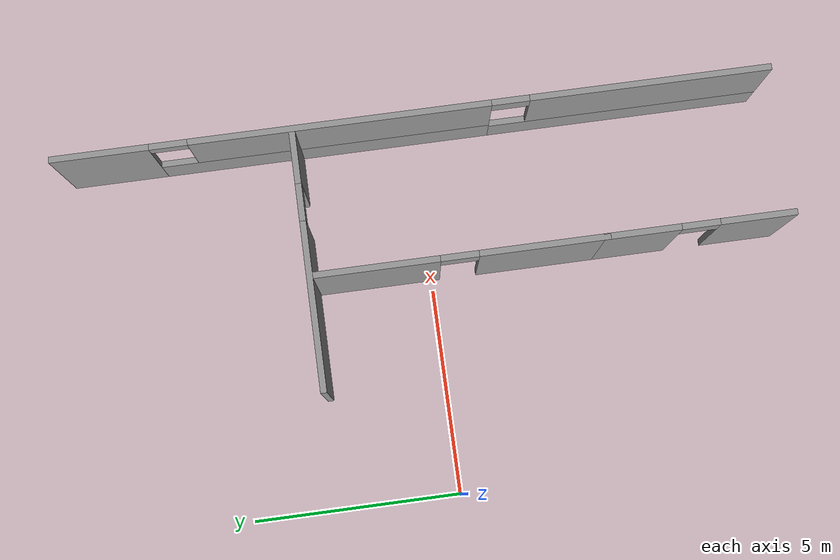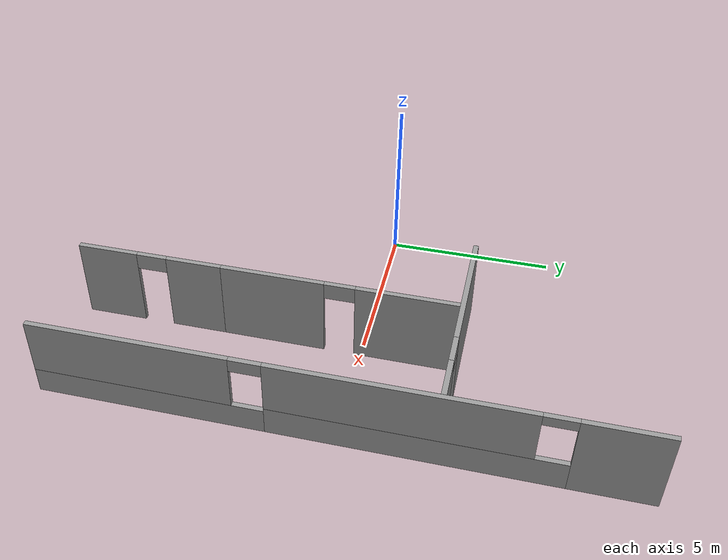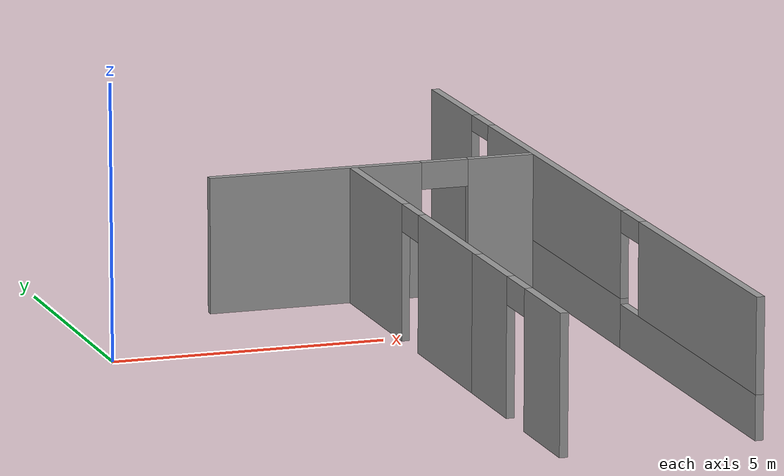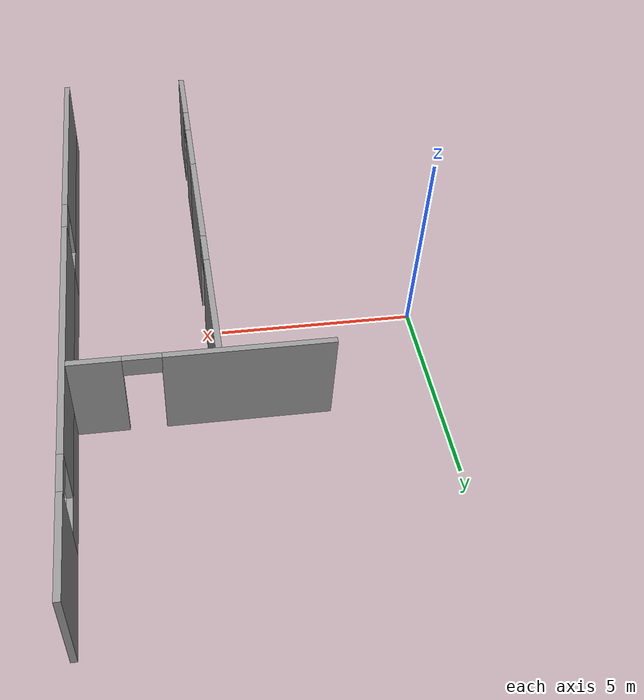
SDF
<sdf version="1.7">
 <model name="federicos_house_v2">
  <link name="Wall_11">
   <pose>8.85021 -0.00256 0 0 0 -1.5708</pose>
   <visual name="Wall_11_Visual_3">
    <pose>5.63643 0 1.65 0 -0 0</pose>
    <geometry><box><size>5.72713 0.15 1.7</size></box></geometry>
    <material>
     <script><uri>file://media/materials/scripts/gazebo.material</uri><name>Gazebo/Grey</name></script>
     <ambient>0.952941 0.952941 0.952941 1</ambient>
     <shader type="pixel"/>
    </material>
    <meta><layer>0</layer></meta>
   </visual>
   <visual name="Wall_11_Visual_2">
    <pose>5.18643 0 0.4 0 -0 0</pose>
    <geometry><box><size>6.62713 0.15 0.8</size></box></geometry>
    <material>
     <script><uri>file://media/materials/scripts/gazebo.material</uri><name>Gazebo/Grey</name></script>
     <ambient>0.952941 0.952941 0.952941 1</ambient>
     <shader type="pixel"/>
    </material>
    <meta><layer>0</layer></meta>
   </visual>
   <visual name="Wall_11_Visual_6">
    <pose>-5.72165 0 2.35 0 -0 0</pose>
    <geometry><box><size>0.9 0.15 0.3</size></box></geometry>
    <material>
     <script><uri>file://media/materials/scripts/gazebo.material</uri><name>Gazebo/Grey</name></script>
     <ambient>0.952941 0.952941 0.952941 1</ambient>
     <shader type="pixel"/>
    </material>
    <meta><layer>0</layer></meta>
   </visual>
   <visual name="Wall_11_Visual_5">
    <pose>2.32287 0 2.3 0 -0 0</pose>
    <geometry><box><size>0.9 0.15 0.4</size></box></geometry>
    <material>
     <script><uri>file://media/materials/scripts/gazebo.material</uri><name>Gazebo/Grey</name></script>
     <ambient>0.952941 0.952941 0.952941 1</ambient>
     <shader type="pixel"/>
    </material>
    <meta><layer>0</layer></meta>
   </visual>
   <visual name="Wall_11_Visual_0">
    <pose>-7.33583 0 1.25 0 -0 0</pose>
    <geometry><box><size>2.32835 0.15 2.5</size></box></geometry>
    <material>
     <script><uri>file://media/materials/scripts/gazebo.material</uri><name>Gazebo/Grey</name></script>
     <ambient>0.952941 0.952941 0.952941 1</ambient>
     <shader type="pixel"/>
    </material>
    <meta><layer>0</layer></meta>
   </visual>
   <visual name="Wall_11_Visual_1">
    <pose>-2.14939 0 0.45 0 -0 0</pose>
    <geometry><box><size>8.04452 0.15 0.9</size></box></geometry>
    <material>
     <script><uri>file://media/materials/scripts/gazebo.material</uri><name>Gazebo/Grey</name></script>
     <ambient>0.952941 0.952941 0.952941 1</ambient>
     <shader type="pixel"/>
    </material>
    <meta><layer>0</layer></meta>
   </visual>
   <visual name="Wall_11_Visual_4">
    <pose>-1.69939 0 1.7 0 -0 0</pose>
    <geometry><box><size>7.14452 0.15 1.6</size></box></geometry>
    <material>
     <script><uri>file://media/materials/scripts/gazebo.material</uri><name>Gazebo/Grey</name></script>
     <ambient>0.952941 0.952941 0.952941 1</ambient>
     <shader type="pixel"/>
    </material>
    <meta><layer>0</layer></meta>
   </visual>
   <collision name="Wall_11_Collision_0">
    <pose>-7.33583 0 1.25 0 -0 0</pose>
    <geometry><box><size>2.32835 0.15 2.5</size></box></geometry>
    <surface>
     <friction>
      <ode><mu>1</mu><mu2>1</mu2><fdir1>0 0 0</fdir1><slip1>0</slip1><slip2>0</slip2></ode>
      <torsional>
       <coefficient>1</coefficient>
       <patch_radius>0</patch_radius>
       <surface_radius>0</surface_radius>
       <use_patch_radius>1</use_patch_radius>
       <ode><slip>0</slip></ode>
      </torsional>
     </friction>
     <bounce><restitution_coefficient>0</restitution_coefficient><threshold>1e+06</threshold></bounce>
     <contact>
      <collide_without_contact>0</collide_without_contact>
      <collide_without_contact_bitmask>1</collide_without_contact_bitmask>
      <collide_bitmask>1</collide_bitmask>
      <ode>
       <soft_cfm>0</soft_cfm>
       <soft_erp>0.2</soft_erp>
       <kp>1e+13</kp>
       <kd>1</kd>
       <max_vel>0.01</max_vel>
       <min_depth>0</min_depth>
      </ode>
      <bullet>
       <split_impulse>1</split_impulse>
       <split_impulse_penetration_threshold>-0.01</split_impulse_penetration_threshold>
       <soft_cfm>0</soft_cfm>
       <soft_erp>0.2</soft_erp>
       <kp>1e+13</kp>
       <kd>1</kd>
      </bullet>
     </contact>
    </surface>
   </collision>
   <collision name="Wall_11_Collision_1">
    <pose>-2.14939 0 0.45 0 -0 0</pose>
    <geometry><box><size>8.04452 0.15 0.9</size></box></geometry>
    <surface>
     <friction>
      <ode><mu>1</mu><mu2>1</mu2><fdir1>0 0 0</fdir1><slip1>0</slip1><slip2>0</slip2></ode>
      <torsional>
       <coefficient>1</coefficient>
       <patch_radius>0</patch_radius>
       <surface_radius>0</surface_radius>
       <use_patch_radius>1</use_patch_radius>
       <ode><slip>0</slip></ode>
      </torsional>
     </friction>
     <bounce><restitution_coefficient>0</restitution_coefficient><threshold>1e+06</threshold></bounce>
     <contact>
      <collide_without_contact>0</collide_without_contact>
      <collide_without_contact_bitmask>1</collide_without_contact_bitmask>
      <collide_bitmask>1</collide_bitmask>
      <ode>
       <soft_cfm>0</soft_cfm>
       <soft_erp>0.2</soft_erp>
       <kp>1e+13</kp>
       <kd>1</kd>
       <max_vel>0.01</max_vel>
       <min_depth>0</min_depth>
      </ode>
      <bullet>
       <split_impulse>1</split_impulse>
       <split_impulse_penetration_threshold>-0.01</split_impulse_penetration_threshold>
       <soft_cfm>0</soft_cfm>
       <soft_erp>0.2</soft_erp>
       <kp>1e+13</kp>
       <kd>1</kd>
      </bullet>
     </contact>
    </surface>
   </collision>
   <collision name="Wall_11_Collision_6">
    <pose>-5.72165 0 2.35 0 -0 0</pose>
    <geometry><box><size>0.9 0.15 0.3</size></box></geometry>
    <surface>
     <friction>
      <ode><mu>1</mu><mu2>1</mu2><fdir1>0 0 0</fdir1><slip1>0</slip1><slip2>0</slip2></ode>
      <torsional>
       <coefficient>1</coefficient>
       <patch_radius>0</patch_radius>
       <surface_radius>0</surface_radius>
       <use_patch_radius>1</use_patch_radius>
       <ode><slip>0</slip></ode>
      </torsional>
     </friction>
     <bounce><restitution_coefficient>0</restitution_coefficient><threshold>1e+06</threshold></bounce>
     <contact>
      <collide_without_contact>0</collide_without_contact>
      <collide_without_contact_bitmask>1</collide_without_contact_bitmask>
      <collide_bitmask>1</collide_bitmask>
      <ode>
       <soft_cfm>0</soft_cfm>
       <soft_erp>0.2</soft_erp>
       <kp>1e+13</kp>
       <kd>1</kd>
       <max_vel>0.01</max_vel>
       <min_depth>0</min_depth>
      </ode>
      <bullet>
       <split_impulse>1</split_impulse>
       <split_impulse_penetration_threshold>-0.01</split_impulse_penetration_threshold>
       <soft_cfm>0</soft_cfm>
       <soft_erp>0.2</soft_erp>
       <kp>1e+13</kp>
       <kd>1</kd>
      </bullet>
     </contact>
    </surface>
   </collision>
   <collision name="Wall_11_Collision_2">
    <pose>5.18643 0 0.4 0 -0 0</pose>
    <geometry><box><size>6.62713 0.15 0.8</size></box></geometry>
    <surface>
     <friction>
      <ode><mu>1</mu><mu2>1</mu2><fdir1>0 0 0</fdir1><slip1>0</slip1><slip2>0</slip2></ode>
      <torsional>
       <coefficient>1</coefficient>
       <patch_radius>0</patch_radius>
       <surface_radius>0</surface_radius>
       <use_patch_radius>1</use_patch_radius>
       <ode><slip>0</slip></ode>
      </torsional>
     </friction>
     <bounce><restitution_coefficient>0</restitution_coefficient><threshold>1e+06</threshold></bounce>
     <contact>
      <collide_without_contact>0</collide_without_contact>
      <collide_without_contact_bitmask>1</collide_without_contact_bitmask>
      <collide_bitmask>1</collide_bitmask>
      <ode>
       <soft_cfm>0</soft_cfm>
       <soft_erp>0.2</soft_erp>
       <kp>1e+13</kp>
       <kd>1</kd>
       <max_vel>0.01</max_vel>
       <min_depth>0</min_depth>
      </ode>
      <bullet>
       <split_impulse>1</split_impulse>
       <split_impulse_penetration_threshold>-0.01</split_impulse_penetration_threshold>
       <soft_cfm>0</soft_cfm>
       <soft_erp>0.2</soft_erp>
       <kp>1e+13</kp>
       <kd>1</kd>
      </bullet>
     </contact>
    </surface>
   </collision>
   <collision name="Wall_11_Collision_5">
    <pose>2.32287 0 2.3 0 -0 0</pose>
    <geometry><box><size>0.9 0.15 0.4</size></box></geometry>
    <surface>
     <friction>
      <ode><mu>1</mu><mu2>1</mu2><fdir1>0 0 0</fdir1><slip1>0</slip1><slip2>0</slip2></ode>
      <torsional>
       <coefficient>1</coefficient>
       <patch_radius>0</patch_radius>
       <surface_radius>0</surface_radius>
       <use_patch_radius>1</use_patch_radius>
       <ode><slip>0</slip></ode>
      </torsional>
     </friction>
     <bounce><restitution_coefficient>0</restitution_coefficient><threshold>1e+06</threshold></bounce>
     <contact>
      <collide_without_contact>0</collide_without_contact>
      <collide_without_contact_bitmask>1</collide_without_contact_bitmask>
      <collide_bitmask>1</collide_bitmask>
      <ode>
       <soft_cfm>0</soft_cfm>
       <soft_erp>0.2</soft_erp>
       <kp>1e+13</kp>
       <kd>1</kd>
       <max_vel>0.01</max_vel>
       <min_depth>0</min_depth>
      </ode>
      <bullet>
       <split_impulse>1</split_impulse>
       <split_impulse_penetration_threshold>-0.01</split_impulse_penetration_threshold>
       <soft_cfm>0</soft_cfm>
       <soft_erp>0.2</soft_erp>
       <kp>1e+13</kp>
       <kd>1</kd>
      </bullet>
     </contact>
    </surface>
   </collision>
   <collision name="Wall_11_Collision_3">
    <pose>5.63643 0 1.65 0 -0 0</pose>
    <geometry><box><size>5.72713 0.15 1.7</size></box></geometry>
    <surface>
     <friction>
      <ode><mu>1</mu><mu2>1</mu2><fdir1>0 0 0</fdir1><slip1>0</slip1><slip2>0</slip2></ode>
      <torsional>
       <coefficient>1</coefficient>
       <patch_radius>0</patch_radius>
       <surface_radius>0</surface_radius>
       <use_patch_radius>1</use_patch_radius>
       <ode><slip>0</slip></ode>
      </torsional>
     </friction>
     <bounce><restitution_coefficient>0</restitution_coefficient><threshold>1e+06</threshold></bounce>
     <contact>
      <collide_without_contact>0</collide_without_contact>
      <collide_without_contact_bitmask>1</collide_without_contact_bitmask>
      <collide_bitmask>1</collide_bitmask>
      <ode>
       <soft_cfm>0</soft_cfm>
       <soft_erp>0.2</soft_erp>
       <kp>1e+13</kp>
       <kd>1</kd>
       <max_vel>0.01</max_vel>
       <min_depth>0</min_depth>
      </ode>
      <bullet>
       <split_impulse>1</split_impulse>
       <split_impulse_penetration_threshold>-0.01</split_impulse_penetration_threshold>
       <soft_cfm>0</soft_cfm>
       <soft_erp>0.2</soft_erp>
       <kp>1e+13</kp>
       <kd>1</kd>
      </bullet>
     </contact>
    </surface>
   </collision>
   <collision name="Wall_11_Collision_4">
    <pose>-1.69939 0 1.7 0 -0 0</pose>
    <geometry><box><size>7.14452 0.15 1.6</size></box></geometry>
    <surface>
     <friction>
      <ode><mu>1</mu><mu2>1</mu2><fdir1>0 0 0</fdir1><slip1>0</slip1><slip2>0</slip2></ode>
      <torsional>
       <coefficient>1</coefficient>
       <patch_radius>0</patch_radius>
       <surface_radius>0</surface_radius>
       <use_patch_radius>1</use_patch_radius>
       <ode><slip>0</slip></ode>
      </torsional>
     </friction>
     <bounce><restitution_coefficient>0</restitution_coefficient><threshold>1e+06</threshold></bounce>
     <contact>
      <collide_without_contact>0</collide_without_contact>
      <collide_without_contact_bitmask>1</collide_without_contact_bitmask>
      <collide_bitmask>1</collide_bitmask>
      <ode>
       <soft_cfm>0</soft_cfm>
       <soft_erp>0.2</soft_erp>
       <kp>1e+13</kp>
       <kd>1</kd>
       <max_vel>0.01</max_vel>
       <min_depth>0</min_depth>
      </ode>
      <bullet>
       <split_impulse>1</split_impulse>
       <split_impulse_penetration_threshold>-0.01</split_impulse_penetration_threshold>
       <soft_cfm>0</soft_cfm>
       <soft_erp>0.2</soft_erp>
       <kp>1e+13</kp>
       <kd>1</kd>
      </bullet>
     </contact>
    </surface>
   </collision>
  </link>
  <link name="Wall_25">
   <pose>5.3498 -6.253 0 0 0 -1.5708</pose>
   <visual name="Wall_25_Visual_0">
    <pose>-1.34853 0 1.25 0 -0 0</pose>
    <geometry><box><size>1.80293 0.15 2.5</size></box></geometry>
    <material>
     <script><uri>file://media/materials/scripts/gazebo.material</uri><name>Gazebo/Grey</name></script>
     <ambient>0.952941 0.952941 0.952941 1</ambient>
     <shader type="pixel"/>
    </material>
    <meta><layer>0</layer></meta>
   </visual>
   <visual name="Wall_25_Visual_1">
    <pose>1.35147 0 1.25 0 -0 0</pose>
    <geometry><box><size>1.79707 0.15 2.5</size></box></geometry>
    <material>
     <script><uri>file://media/materials/scripts/gazebo.material</uri><name>Gazebo/Grey</name></script>
     <ambient>0.952941 0.952941 0.952941 1</ambient>
     <shader type="pixel"/>
    </material>
    <meta><layer>0</layer></meta>
   </visual>
   <visual name="Wall_25_Visual_2">
    <pose>0.002931 0 2.25 0 -0 0</pose>
    <geometry><box><size>0.9 0.15 0.5</size></box></geometry>
    <material>
     <script><uri>file://media/materials/scripts/gazebo.material</uri><name>Gazebo/Grey</name></script>
     <ambient>0.952941 0.952941 0.952941 1</ambient>
     <shader type="pixel"/>
    </material>
    <meta><layer>0</layer></meta>
   </visual>
   <collision name="Wall_25_Collision_0">
    <pose>-1.34853 0 1.25 0 -0 0</pose>
    <geometry><box><size>1.80293 0.15 2.5</size></box></geometry>
    <surface>
     <friction>
      <ode><mu>1</mu><mu2>1</mu2><fdir1>0 0 0</fdir1><slip1>0</slip1><slip2>0</slip2></ode>
      <torsional>
       <coefficient>1</coefficient>
       <patch_radius>0</patch_radius>
       <surface_radius>0</surface_radius>
       <use_patch_radius>1</use_patch_radius>
       <ode><slip>0</slip></ode>
      </torsional>
     </friction>
     <bounce><restitution_coefficient>0</restitution_coefficient><threshold>1e+06</threshold></bounce>
     <contact>
      <collide_without_contact>0</collide_without_contact>
      <collide_without_contact_bitmask>1</collide_without_contact_bitmask>
      <collide_bitmask>1</collide_bitmask>
      <ode>
       <soft_cfm>0</soft_cfm>
       <soft_erp>0.2</soft_erp>
       <kp>1e+13</kp>
       <kd>1</kd>
       <max_vel>0.01</max_vel>
       <min_depth>0</min_depth>
      </ode>
      <bullet>
       <split_impulse>1</split_impulse>
       <split_impulse_penetration_threshold>-0.01</split_impulse_penetration_threshold>
       <soft_cfm>0</soft_cfm>
       <soft_erp>0.2</soft_erp>
       <kp>1e+13</kp>
       <kd>1</kd>
      </bullet>
     </contact>
    </surface>
   </collision>
   <collision name="Wall_25_Collision_2">
    <pose>0.002931 0 2.25 0 -0 0</pose>
    <geometry><box><size>0.9 0.15 0.5</size></box></geometry>
    <surface>
     <friction>
      <ode><mu>1</mu><mu2>1</mu2><fdir1>0 0 0</fdir1><slip1>0</slip1><slip2>0</slip2></ode>
      <torsional>
       <coefficient>1</coefficient>
       <patch_radius>0</patch_radius>
       <surface_radius>0</surface_radius>
       <use_patch_radius>1</use_patch_radius>
       <ode><slip>0</slip></ode>
      </torsional>
     </friction>
     <bounce><restitution_coefficient>0</restitution_coefficient><threshold>1e+06</threshold></bounce>
     <contact>
      <collide_without_contact>0</collide_without_contact>
      <collide_without_contact_bitmask>1</collide_without_contact_bitmask>
      <collide_bitmask>1</collide_bitmask>
      <ode>
       <soft_cfm>0</soft_cfm>
       <soft_erp>0.2</soft_erp>
       <kp>1e+13</kp>
       <kd>1</kd>
       <max_vel>0.01</max_vel>
       <min_depth>0</min_depth>
      </ode>
      <bullet>
       <split_impulse>1</split_impulse>
       <split_impulse_penetration_threshold>-0.01</split_impulse_penetration_threshold>
       <soft_cfm>0</soft_cfm>
       <soft_erp>0.2</soft_erp>
       <kp>1e+13</kp>
       <kd>1</kd>
      </bullet>
     </contact>
    </surface>
   </collision>
   <collision name="Wall_25_Collision_1">
    <pose>1.35147 0 1.25 0 -0 0</pose>
    <geometry><box><size>1.79707 0.15 2.5</size></box></geometry>
    <surface>
     <friction>
      <ode><mu>1</mu><mu2>1</mu2><fdir1>0 0 0</fdir1><slip1>0</slip1><slip2>0</slip2></ode>
      <torsional>
       <coefficient>1</coefficient>
       <patch_radius>0</patch_radius>
       <surface_radius>0</surface_radius>
       <use_patch_radius>1</use_patch_radius>
       <ode><slip>0</slip></ode>
      </torsional>
     </friction>
     <bounce><restitution_coefficient>0</restitution_coefficient><threshold>1e+06</threshold></bounce>
     <contact>
      <collide_without_contact>0</collide_without_contact>
      <collide_without_contact_bitmask>1</collide_without_contact_bitmask>
      <collide_bitmask>1</collide_bitmask>
      <ode>
       <soft_cfm>0</soft_cfm>
       <soft_erp>0.2</soft_erp>
       <kp>1e+13</kp>
       <kd>1</kd>
       <max_vel>0.01</max_vel>
       <min_depth>0</min_depth>
      </ode>
      <bullet>
       <split_impulse>1</split_impulse>
       <split_impulse_penetration_threshold>-0.01</split_impulse_penetration_threshold>
       <soft_cfm>0</soft_cfm>
       <soft_erp>0.2</soft_erp>
       <kp>1e+13</kp>
       <kd>1</kd>
      </bullet>
     </contact>
    </surface>
   </collision>
  </link>
  <link name="Wall_32">
   <pose>5.3498 -0.653 0 0 -0 1.5708</pose>
   <inertial>
    <mass>1</mass>
    <inertia><ixx>1</ixx><ixy>0</ixy><ixz>0</ixz><iyy>1</iyy><iyz>0</iyz><izz>1</izz></inertia>
   </inertial>
   <visual name="Wall_32_Visual_1">
    <pose>1.93 0 1.25 0 -0 0</pose>
    <geometry><box><size>2.95 0.15 2.5</size></box></geometry>
    <material>
     <script><uri>file://media/materials/scripts/gazebo.material</uri><name>Gazebo/Grey</name></script>
     <ambient>0.953 0.953 0.953 1</ambient>
     <shader type="pixel"><normal_map>__default__</normal_map></shader>
     <diffuse>0.7 0.7 0.7 1</diffuse>
     <specular>0.01 0.01 0.01 1</specular>
     <emissive>0 0 0 1</emissive>
    </material>
    <meta><layer>0</layer></meta>
   </visual>
   <visual name="Wall_32_Visual_0">
    <pose>-1.97184 0 1.25 0 -0 0</pose>
    <geometry><box><size>3.05631 0.15 2.5</size></box></geometry>
    <material>
     <script><uri>file://media/materials/scripts/gazebo.material</uri><name>Gazebo/Grey</name></script>
     <ambient>0.953 0.953 0.953 1</ambient>
     <shader type="pixel"><normal_map>__default__</normal_map></shader>
     <diffuse>0.7 0.7 0.7 1</diffuse>
     <specular>0.01 0.01 0.01 1</specular>
     <emissive>0 0 0 1</emissive>
    </material>
    <meta><layer>0</layer></meta>
   </visual>
   <visual name="Wall_32_Visual_2">
    <pose>0.006313 0 2.25 0 -0 0</pose>
    <geometry><box><size>0.9 0.15 0.5</size></box></geometry>
    <material>
     <script><uri>file://media/materials/scripts/gazebo.material</uri><name>Gazebo/Grey</name></script>
     <ambient>0.953 0.953 0.953 1</ambient>
     <shader type="pixel"><normal_map>__default__</normal_map></shader>
     <diffuse>0.7 0.7 0.7 1</diffuse>
     <specular>0.01 0.01 0.01 1</specular>
     <emissive>0 0 0 1</emissive>
    </material>
    <meta><layer>0</layer></meta>
   </visual>
   <collision name="Wall_32_Collision_1">
    <pose>1.93 0 1.25 0 -0 0</pose>
    <geometry><box><size>2.95 0.15 2.5</size></box></geometry>
    <surface>
     <friction>
      <ode><mu>1</mu><mu2>1</mu2><fdir1>0 0 0</fdir1><slip1>0</slip1><slip2>0</slip2></ode>
      <torsional>
       <coefficient>1</coefficient>
       <patch_radius>0</patch_radius>
       <surface_radius>0</surface_radius>
       <use_patch_radius>1</use_patch_radius>
       <ode><slip>0</slip></ode>
      </torsional>
     </friction>
     <bounce><restitution_coefficient>0</restitution_coefficient><threshold>1e+06</threshold></bounce>
     <contact>
      <collide_without_contact>0</collide_without_contact>
      <collide_without_contact_bitmask>1</collide_without_contact_bitmask>
      <collide_bitmask>1</collide_bitmask>
      <ode>
       <soft_cfm>0</soft_cfm>
       <soft_erp>0.2</soft_erp>
       <kp>1e+13</kp>
       <kd>1</kd>
       <max_vel>0.01</max_vel>
       <min_depth>0</min_depth>
      </ode>
      <bullet>
       <split_impulse>1</split_impulse>
       <split_impulse_penetration_threshold>-0.01</split_impulse_penetration_threshold>
       <soft_cfm>0</soft_cfm>
       <soft_erp>0.2</soft_erp>
       <kp>1e+13</kp>
       <kd>1</kd>
      </bullet>
     </contact>
    </surface>
   </collision>
   <collision name="Wall_32_Collision_0">
    <pose>-1.97184 0 1.25 0 -0 0</pose>
    <geometry><box><size>3.05631 0.15 2.5</size></box></geometry>
    <surface>
     <friction>
      <ode><mu>1</mu><mu2>1</mu2><fdir1>0 0 0</fdir1><slip1>0</slip1><slip2>0</slip2></ode>
      <torsional>
       <coefficient>1</coefficient>
       <patch_radius>0</patch_radius>
       <surface_radius>0</surface_radius>
       <use_patch_radius>1</use_patch_radius>
       <ode><slip>0</slip></ode>
      </torsional>
     </friction>
     <bounce><restitution_coefficient>0</restitution_coefficient><threshold>1e+06</threshold></bounce>
     <contact>
      <collide_without_contact>0</collide_without_contact>
      <collide_without_contact_bitmask>1</collide_without_contact_bitmask>
      <collide_bitmask>1</collide_bitmask>
      <ode>
       <soft_cfm>0</soft_cfm>
       <soft_erp>0.2</soft_erp>
       <kp>1e+13</kp>
       <kd>1</kd>
       <max_vel>0.01</max_vel>
       <min_depth>0</min_depth>
      </ode>
      <bullet>
       <split_impulse>1</split_impulse>
       <split_impulse_penetration_threshold>-0.01</split_impulse_penetration_threshold>
       <soft_cfm>0</soft_cfm>
       <soft_erp>0.2</soft_erp>
       <kp>1e+13</kp>
       <kd>1</kd>
      </bullet>
     </contact>
    </surface>
   </collision>
   <collision name="Wall_32_Collision_2">
    <pose>0.006313 0 2.25 0 -0 0</pose>
    <geometry><box><size>0.9 0.15 0.5</size></box></geometry>
    <surface>
     <friction>
      <ode><mu>1</mu><mu2>1</mu2><fdir1>0 0 0</fdir1><slip1>0</slip1><slip2>0</slip2></ode>
      <torsional>
       <coefficient>1</coefficient>
       <patch_radius>0</patch_radius>
       <surface_radius>0</surface_radius>
       <use_patch_radius>1</use_patch_radius>
       <ode><slip>0</slip></ode>
      </torsional>
     </friction>
     <bounce><restitution_coefficient>0</restitution_coefficient><threshold>1e+06</threshold></bounce>
     <contact>
      <collide_without_contact>0</collide_without_contact>
      <collide_without_contact_bitmask>1</collide_without_contact_bitmask>
      <collide_bitmask>1</collide_bitmask>
      <ode>
       <soft_cfm>0</soft_cfm>
       <soft_erp>0.2</soft_erp>
       <kp>1e+13</kp>
       <kd>1</kd>
       <max_vel>0.01</max_vel>
       <min_depth>0</min_depth>
      </ode>
      <bullet>
       <split_impulse>1</split_impulse>
       <split_impulse_penetration_threshold>-0.01</split_impulse_penetration_threshold>
       <soft_cfm>0</soft_cfm>
       <soft_erp>0.2</soft_erp>
       <kp>1e+13</kp>
       <kd>1</kd>
      </bullet>
     </contact>
    </surface>
   </collision>
  </link>
  <link name="Wall_34">
   <pose>5.6948 2.828 0 0 -0 0</pose>
   <inertial>
    <mass>1</mass>
    <inertia><ixx>1</ixx><ixy>0</ixy><ixz>0</ixz><iyy>1</iyy><iyz>0</iyz><izz>1</izz></inertia>
   </inertial>
   <visual name="Wall_34_Visual_2">
    <pose>1.38704 0 2.25 0 -0 0</pose>
    <geometry><box><size>0.9 0.15 0.5</size></box></geometry>
    <material>
     <script><uri>file://media/materials/scripts/gazebo.material</uri><name>Gazebo/Grey</name></script>
     <ambient>0.95 0.95 0.95 1</ambient>
     <shader type="pixel"><normal_map>__default__</normal_map></shader>
     <diffuse>0.7 0.7 0.7 1</diffuse>
     <specular>0.01 0.01 0.01 1</specular>
     <emissive>0 0 0 1</emissive>
    </material>
    <meta><layer>0</layer></meta>
   </visual>
   <visual name="Wall_34_Visual_1">
    <pose>2.4585 0 1.25 0 -0 0</pose>
    <geometry><box><size>1.245 0.15 2.5</size></box></geometry>
    <material>
     <script><uri>file://media/materials/scripts/gazebo.material</uri><name>Gazebo/Grey</name></script>
     <ambient>0.95 0.95 0.95 1</ambient>
     <shader type="pixel"><normal_map>__default__</normal_map></shader>
     <diffuse>0.7 0.7 0.7 1</diffuse>
     <specular>0.01 0.01 0.01 1</specular>
     <emissive>0 0 0 1</emissive>
    </material>
    <meta><layer>0</layer></meta>
   </visual>
   <visual name="Wall_34_Visual_0">
    <pose>-1.05 0 1.25 0 -0 0</pose>
    <geometry><box><size>4 0.15 2.5</size></box></geometry>
    <material>
     <script><uri>file://media/materials/scripts/gazebo.material</uri><name>Gazebo/Grey</name></script>
     <ambient>0.95 0.95 0.95 1</ambient>
     <shader type="pixel"><normal_map>__default__</normal_map></shader>
     <diffuse>0.7 0.7 0.7 1</diffuse>
     <specular>0.01 0.01 0.01 1</specular>
     <emissive>0 0 0 1</emissive>
    </material>
    <meta><layer>0</layer></meta>
   </visual>
   <collision name="Wall_34_Collision_2">
    <pose>1.38704 0 2.25 0 -0 0</pose>
    <geometry><box><size>0.9 0.15 0.5</size></box></geometry>
    <surface>
     <friction>
      <ode><mu>1</mu><mu2>1</mu2><fdir1>0 0 0</fdir1><slip1>0</slip1><slip2>0</slip2></ode>
      <torsional>
       <coefficient>1</coefficient>
       <patch_radius>0</patch_radius>
       <surface_radius>0</surface_radius>
       <use_patch_radius>1</use_patch_radius>
       <ode><slip>0</slip></ode>
      </torsional>
     </friction>
     <bounce><restitution_coefficient>0</restitution_coefficient><threshold>1e+06</threshold></bounce>
     <contact>
      <collide_without_contact>0</collide_without_contact>
      <collide_without_contact_bitmask>1</collide_without_contact_bitmask>
      <collide_bitmask>1</collide_bitmask>
      <ode>
       <soft_cfm>0</soft_cfm>
       <soft_erp>0.2</soft_erp>
       <kp>1e+13</kp>
       <kd>1</kd>
       <max_vel>0.01</max_vel>
       <min_depth>0</min_depth>
      </ode>
      <bullet>
       <split_impulse>1</split_impulse>
       <split_impulse_penetration_threshold>-0.01</split_impulse_penetration_threshold>
       <soft_cfm>0</soft_cfm>
       <soft_erp>0.2</soft_erp>
       <kp>1e+13</kp>
       <kd>1</kd>
      </bullet>
     </contact>
    </surface>
   </collision>
   <collision name="Wall_34_Collision_0">
    <pose>-1.05 0 1.25 0 -0 0</pose>
    <geometry><box><size>4 0.15 2.5</size></box></geometry>
    <surface>
     <friction>
      <ode><mu>1</mu><mu2>1</mu2><fdir1>0 0 0</fdir1><slip1>0</slip1><slip2>0</slip2></ode>
      <torsional>
       <coefficient>1</coefficient>
       <patch_radius>0</patch_radius>
       <surface_radius>0</surface_radius>
       <use_patch_radius>1</use_patch_radius>
       <ode><slip>0</slip></ode>
      </torsional>
     </friction>
     <bounce><restitution_coefficient>0</restitution_coefficient><threshold>1e+06</threshold></bounce>
     <contact>
      <collide_without_contact>0</collide_without_contact>
      <collide_without_contact_bitmask>1</collide_without_contact_bitmask>
      <collide_bitmask>1</collide_bitmask>
      <ode>
       <soft_cfm>0</soft_cfm>
       <soft_erp>0.2</soft_erp>
       <kp>1e+13</kp>
       <kd>1</kd>
       <max_vel>0.01</max_vel>
       <min_depth>0</min_depth>
      </ode>
      <bullet>
       <split_impulse>1</split_impulse>
       <split_impulse_penetration_threshold>-0.01</split_impulse_penetration_threshold>
       <soft_cfm>0</soft_cfm>
       <soft_erp>0.2</soft_erp>
       <kp>1e+13</kp>
       <kd>1</kd>
      </bullet>
     </contact>
    </surface>
   </collision>
   <collision name="Wall_34_Collision_1">
    <pose>2.4585 0 1.25 0 -0 0</pose>
    <geometry><box><size>1.245 0.15 2.5</size></box></geometry>
    <surface>
     <friction>
      <ode><mu>1</mu><mu2>1</mu2><fdir1>0 0 0</fdir1><slip1>0</slip1><slip2>0</slip2></ode>
      <torsional>
       <coefficient>1</coefficient>
       <patch_radius>0</patch_radius>
       <surface_radius>0</surface_radius>
       <use_patch_radius>1</use_patch_radius>
       <ode><slip>0</slip></ode>
      </torsional>
     </friction>
     <bounce><restitution_coefficient>0</restitution_coefficient><threshold>1e+06</threshold></bounce>
     <contact>
      <collide_without_contact>0</collide_without_contact>
      <collide_without_contact_bitmask>1</collide_without_contact_bitmask>
      <collide_bitmask>1</collide_bitmask>
      <ode>
       <soft_cfm>0</soft_cfm>
       <soft_erp>0.2</soft_erp>
       <kp>1e+13</kp>
       <kd>1</kd>
       <max_vel>0.01</max_vel>
       <min_depth>0</min_depth>
      </ode>
      <bullet>
       <split_impulse>1</split_impulse>
       <split_impulse_penetration_threshold>-0.01</split_impulse_penetration_threshold>
       <soft_cfm>0</soft_cfm>
       <soft_erp>0.2</soft_erp>
       <kp>1e+13</kp>
       <kd>1</kd>
      </bullet>
     </contact>
    </surface>
   </collision>
  </link>
  <static>1</static>
 </model>
</sdf>
